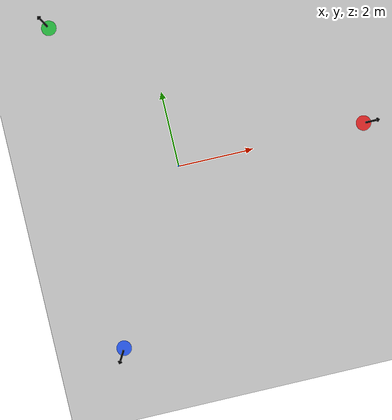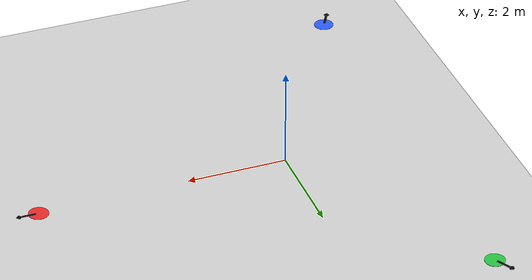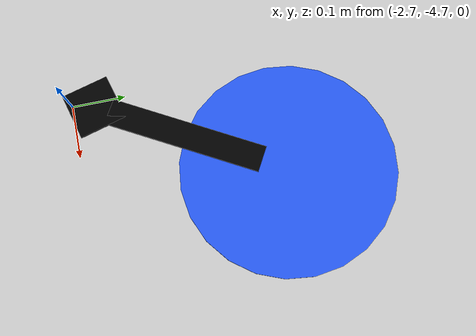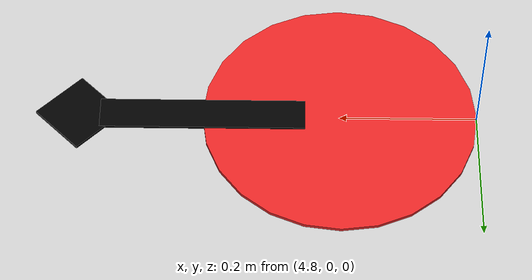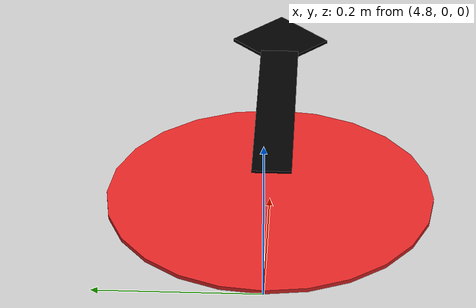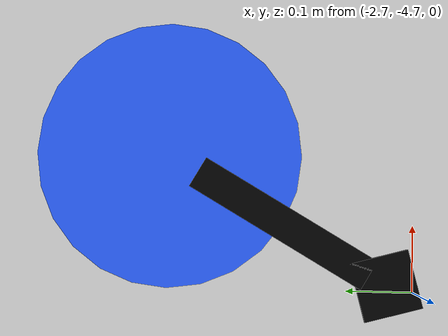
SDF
<?xml version="1.0" ?>
<sdf version="1.6">
  <world name="gp2">
    <physics name="1ms" type="ignored">
      <max_step_size>0.004</max_step_size>
      <real_time_factor>1.0</real_time_factor>
    </physics>

    <plugin filename="gz-sim-contact-system" name="gz::sim::systems::Contact" />
    <plugin filename="gz-sim-imu-system" name="gz::sim::systems::Imu" />
    <plugin filename="gz-sim-physics-system" name="gz::sim::systems::Physics" />
    <plugin filename="gz-sim-scene-broadcaster-system" name="gz::sim::systems::SceneBroadcaster" />
    <plugin filename="gz-sim-sensors-system" name="gz::sim::systems::Sensors" />
    <plugin filename="gz-sim-user-commands-system" name="gz::sim::systems::UserCommands" />

    <spherical_coordinates>
      <surface_model>EARTH_WGS84</surface_model>
      <world_frame_orientation>ENU</world_frame_orientation>
      <latitude_deg>50.088384</latitude_deg>
      <longitude_deg>19.939128</longitude_deg>
      <elevation>0</elevation>
      <heading_deg>0</heading_deg>
    </spherical_coordinates>

    <light type="directional" name="sun">
      <cast_shadows>true</cast_shadows>
      <pose>0 0 10 0 0 0</pose>
      <diffuse>0.8 0.8 0.8 1</diffuse>
      <specular>0.2 0.2 0.2 1</specular>
      <attenuation>
        <range>1000</range>
        <constant>0.9</constant>
        <linear>0.01</linear>
        <quadratic>0.001</quadratic>
      </attenuation>
      <direction>-0.5 0.1 -0.9</direction>
    </light>

    <model name="ground_plane">
      <static>true</static>
      <link name="link">
        <collision name="collision">
          <geometry>
            <plane>
              <normal>0 0 1</normal>
              <size>100 100</size>
            </plane>
          </geometry>
        </collision>
        <visual name="visual">
          <geometry>
            <plane>
              <normal>0 0 1</normal>
              <size>100 100</size>
            </plane>
          </geometry>
          <material>
            <ambient>0.8 0.8 0.8 1</ambient>
            <diffuse>0.8 0.8 0.8 1</diffuse>
            <specular>0.8 0.8 0.8 1</specular>
          </material>
        </visual>
      </link>
    </model>

    <!-- Goal markers (visual only, no collision).                         -->
    <!-- Each marker's link pose is (goal_x, goal_y, 0, 0, 0, heading),    -->
    <!-- so the arrow (authored along the marker's local +X) always        -->
    <!-- points toward the goal's final_heading.                           -->
    <!-- Equilateral triangle, radius 5 m around the origin, vertices at   -->
    <!-- angles 0, 2pi/3, -2pi/3. Each final_heading points radially       -->
    <!-- outward (away from the origin).                                   -->
    <!--   Goal 1: ( 5.00,  0.000,  heading=  0.0000)    red              -->
    <!--   Goal 2: (-2.50,  4.330,  heading=  2.0944)    green            -->
    <!--   Goal 3: (-2.50, -4.330,  heading= -2.0944)    blue             -->

    <model name="goal_marker_1">
      <static>true</static>
      <link name="link">
        <pose>5.0 0.0 0.0 0.0 0.0 0.0</pose>
        <!-- Disk (target base) -->
        <visual name="disk">
          <pose>0 0 0.0025 0 0 0</pose>
          <geometry>
            <cylinder>
              <radius>0.20</radius>
              <length>0.005</length>
            </cylinder>
          </geometry>
          <material>
            <ambient>0.90 0.15 0.15 1</ambient>
            <diffuse>0.90 0.15 0.15 1</diffuse>
            <specular>0.10 0.10 0.10 1</specular>
          </material>
        </visual>
        <!-- Arrow shaft (along local +X = heading direction) -->
        <visual name="arrow_shaft">
          <pose>0.20 0.0 0.006 0 0 0</pose>
          <geometry>
            <box>
              <size>0.30 0.05 0.004</size>
            </box>
          </geometry>
          <material>
            <ambient>0.0 0.0 0.0 1</ambient>
            <diffuse>0.0 0.0 0.0 1</diffuse>
            <specular>0.1 0.1 0.1 1</specular>
          </material>
        </visual>
        <!-- Arrow head (triangular tip, approximated by rotated box) -->
        <visual name="arrow_head">
          <pose>0.38 0.0 0.006 0 0 0.7853981633974483</pose>
          <geometry>
            <box>
              <size>0.09 0.09 0.004</size>
            </box>
          </geometry>
          <material>
            <ambient>0.0 0.0 0.0 1</ambient>
            <diffuse>0.0 0.0 0.0 1</diffuse>
            <specular>0.1 0.1 0.1 1</specular>
          </material>
        </visual>
      </link>
    </model>

    <model name="goal_marker_2">
      <static>true</static>
      <link name="link">
        <pose>-2.5 4.330127018922193 0.0 0.0 0.0 2.0943951023931953</pose>
        <visual name="disk">
          <pose>0 0 0.0025 0 0 0</pose>
          <geometry>
            <cylinder>
              <radius>0.20</radius>
              <length>0.005</length>
            </cylinder>
          </geometry>
          <material>
            <ambient>0.15 0.75 0.25 1</ambient>
            <diffuse>0.15 0.75 0.25 1</diffuse>
            <specular>0.10 0.10 0.10 1</specular>
          </material>
        </visual>
        <visual name="arrow_shaft">
          <pose>0.20 0.0 0.006 0 0 0</pose>
          <geometry>
            <box>
              <size>0.30 0.05 0.004</size>
            </box>
          </geometry>
          <material>
            <ambient>0.0 0.0 0.0 1</ambient>
            <diffuse>0.0 0.0 0.0 1</diffuse>
            <specular>0.1 0.1 0.1 1</specular>
          </material>
        </visual>
        <visual name="arrow_head">
          <pose>0.38 0.0 0.006 0 0 0.7853981633974483</pose>
          <geometry>
            <box>
              <size>0.09 0.09 0.004</size>
            </box>
          </geometry>
          <material>
            <ambient>0.0 0.0 0.0 1</ambient>
            <diffuse>0.0 0.0 0.0 1</diffuse>
            <specular>0.1 0.1 0.1 1</specular>
          </material>
        </visual>
      </link>
    </model>

    <model name="goal_marker_3">
      <static>true</static>
      <link name="link">
        <pose>-2.5 -4.330127018922193 0.0 0.0 0.0 -2.0943951023931953</pose>
        <visual name="disk">
          <pose>0 0 0.0025 0 0 0</pose>
          <geometry>
            <cylinder>
              <radius>0.20</radius>
              <length>0.005</length>
            </cylinder>
          </geometry>
          <material>
            <ambient>0.15 0.35 0.95 1</ambient>
            <diffuse>0.15 0.35 0.95 1</diffuse>
            <specular>0.10 0.10 0.10 1</specular>
          </material>
        </visual>
        <visual name="arrow_shaft">
          <pose>0.20 0.0 0.006 0 0 0</pose>
          <geometry>
            <box>
              <size>0.30 0.05 0.004</size>
            </box>
          </geometry>
          <material>
            <ambient>0.0 0.0 0.0 1</ambient>
            <diffuse>0.0 0.0 0.0 1</diffuse>
            <specular>0.1 0.1 0.1 1</specular>
          </material>
        </visual>
        <visual name="arrow_head">
          <pose>0.38 0.0 0.006 0 0 0.7853981633974483</pose>
          <geometry>
            <box>
              <size>0.09 0.09 0.004</size>
            </box>
          </geometry>
          <material>
            <ambient>0.0 0.0 0.0 1</ambient>
            <diffuse>0.0 0.0 0.0 1</diffuse>
            <specular>0.1 0.1 0.1 1</specular>
          </material>
        </visual>
      </link>
    </model>

  </world>
</sdf>
